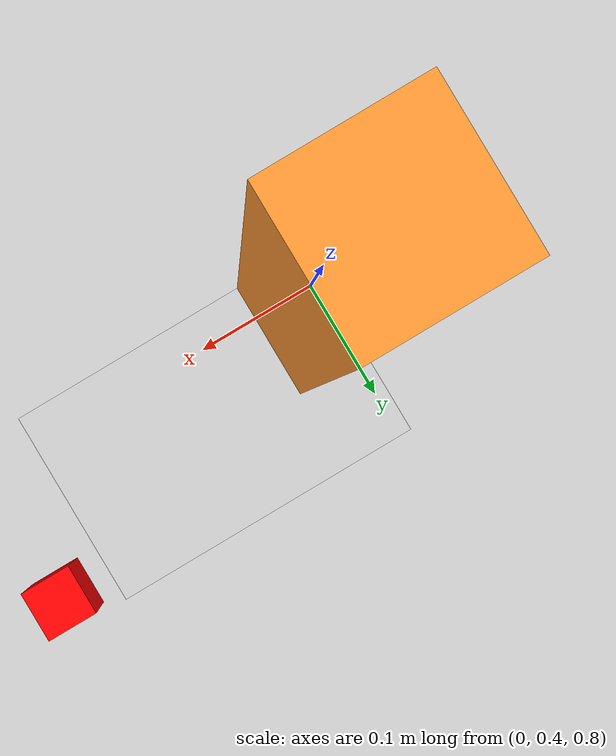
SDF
<?xml version='1.0' ?>
<sdf version="1.8">
  <world name="smallbox">
    <physics type="bullet" name="dart_physics">
      <max_step_size>0.001</max_step_size>
      <real_time_factor>1</real_time_factor>
      <real_time_update_rate>1000.0</real_time_update_rate>
      <dart>
        <solver>
          <solver_type>dantzig</solver_type>
        </solver>
        <collision_detector>fcl</collision_detector>
      </dart>
    </physics>
    <plugin
      filename="gz-sim-physics-system"
      name="gz::sim::systems::Physics">
    </plugin>
    <plugin
      filename="gz-sim-user-commands-system"
      name="gz::sim::systems::UserCommands">
    </plugin>
    <plugin
      filename="gz-sim-scene-broadcaster-system"
      name="gz::sim::systems::SceneBroadcaster">
    </plugin>

    <!--light-->
    <light type="directional" name="sun">
      <cast_shadows>true</cast_shadows>
      <pose>0 0 10 0 0 0</pose>
      <diffuse>0.8 0.8 0.8 1</diffuse>
      <specular>0.2 0.2 0.2 1</specular>
      <attenuation>
        <range>1000</range>
        <constant>0.9</constant>
        <linear>0.01</linear>
        <quadratic>0.001</quadratic>
      </attenuation>
      <direction>-0.5 0.1 -0.9</direction>
    </light>

    <!-- Ground Plane -->
    <model name="ground_plane">
      <static>true</static>
      <link name="link">
        <collision name="collision">
          <geometry>
            <plane>
              <normal>0 0 1</normal>
              <size>100 100</size>
            </plane>
          </geometry>
        </collision>
        <visual name="visual">
          <geometry>
            <plane>
              <normal>0 0 1</normal>
              <size>100 100</size>
            </plane>
          </geometry>
          <material>
            <ambient>0.8 0.8 0.8 1</ambient>
            <diffuse>0.8 0.8 0.8 1</diffuse>
            <specular>0.8 0.8 0.8 1</specular>
          </material>
        </visual>
      </link>
    </model>

    <!-- Add square shelf -->

    <include>
        <static>false</static>
        <uri>model://cuboid</uri>
      <pose>0.00 0.42 0.96 0 0 0</pose>
    </include>

    <!-- Add an object somewhere on the table -->
    <include>
      <static>false</static>
      <uri>model://cube</uri>
      <pose>0.2858 0.5097 0.845 0 0 0</pose>
    </include>

  </world>
</sdf>

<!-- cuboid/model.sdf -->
<!-- cuboid.sdf -->
<!-- Copy for Gazebo -->
<sdf version="1.6">
    <model name="cuboid">
    <pose>0 0 0.05 0 0 0</pose> <!-- z = half the height to raise the  from the ground -->
        <link name="link">
            <visual name="visual">
                <geometry>
                    <box><size>0.1 0.1 0.35</size></box>
                </geometry>
                <material>
                    <ambient>1 0.7 0.4 1</ambient>
                    <diffuse>1 0.6 0.2 1</diffuse>
                    <specular>0.15 0.12 0.1 1</specular>
                    <emissive>0 0 0 1</emissive>
                </material>
            </visual>
            <collision name="collision">
                <geometry>
                    <box><size>0.1 0.1 0.35</size></box>
                </geometry>
            </collision>
        </link>
        <plugin
        filename="gz-sim-pose-publisher-system"
        name="gz::sim::systems::PosePublisher">
        <use_pose_vector_msg>true</use_pose_vector_msg>
        <publish_nested_model_pose>true</publish_nested_model_pose>
      </plugin>
    </model>
</sdf>

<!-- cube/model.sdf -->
<!-- cube.sdf -->
<sdf version="1.6">
    <model name="cube">
    <pose>0 0 0.05 0 0 0</pose> <!-- z = half the height to raise the from the ground -->
        <link name="link">
            <visual name="visual">
                <geometry>
                    <box><size>0.04 0.04 0.045</size></box>
                </geometry>
                <material>
                    <ambient>1 0 0 1</ambient> <!-- Red color -->
                    <diffuse>1 0 0 1</diffuse> <!-- Red color -->
                    <specular>0.1 0.1 0.1 1</specular>
                    <emissive>0 0 0 1</emissive>
                </material>
            </visual>
            <collision name="collision">
                <geometry>
                    <box><size>0.04 0.04 0.045</size></box>
                </geometry>
            </collision>
        </link>
        <plugin
        filename="gz-sim-pose-publisher-system"
        name="gz::sim::systems::PosePublisher">
        <use_pose_vector_msg>true</use_pose_vector_msg>
        <publish_nested_model_pose>true</publish_nested_model_pose>
      </plugin>
    </model>
</sdf>
